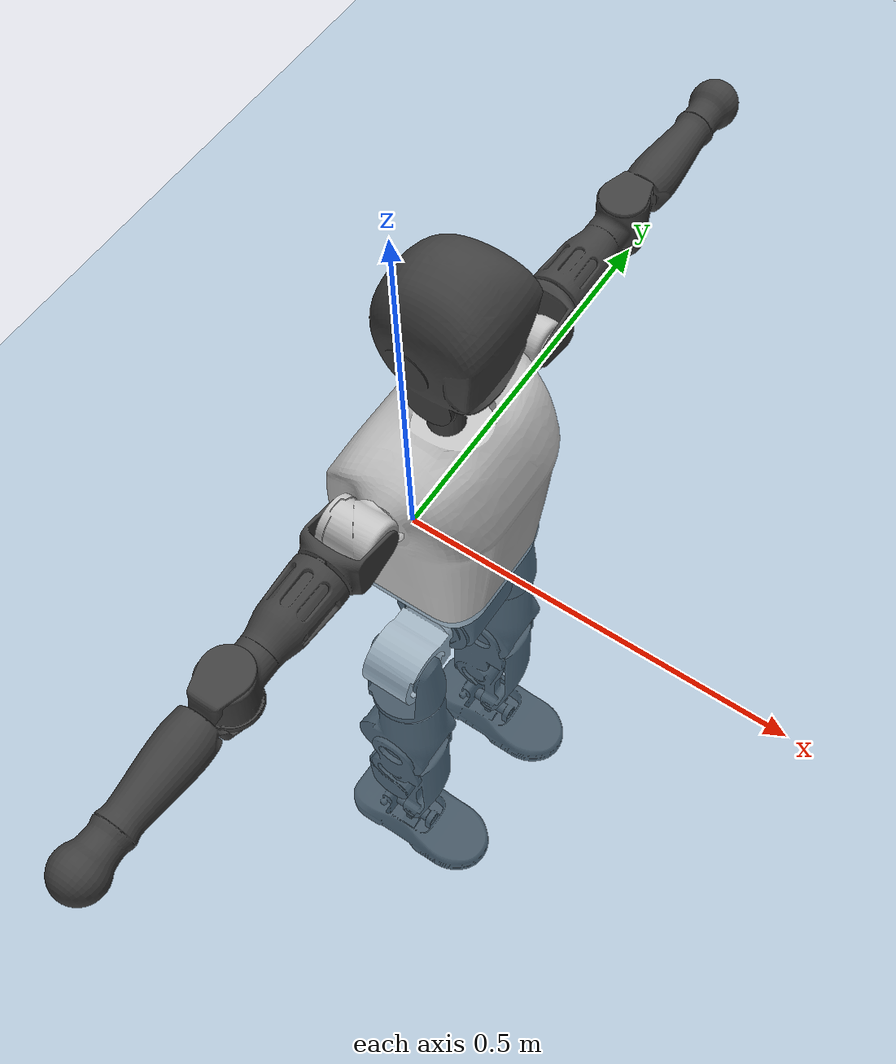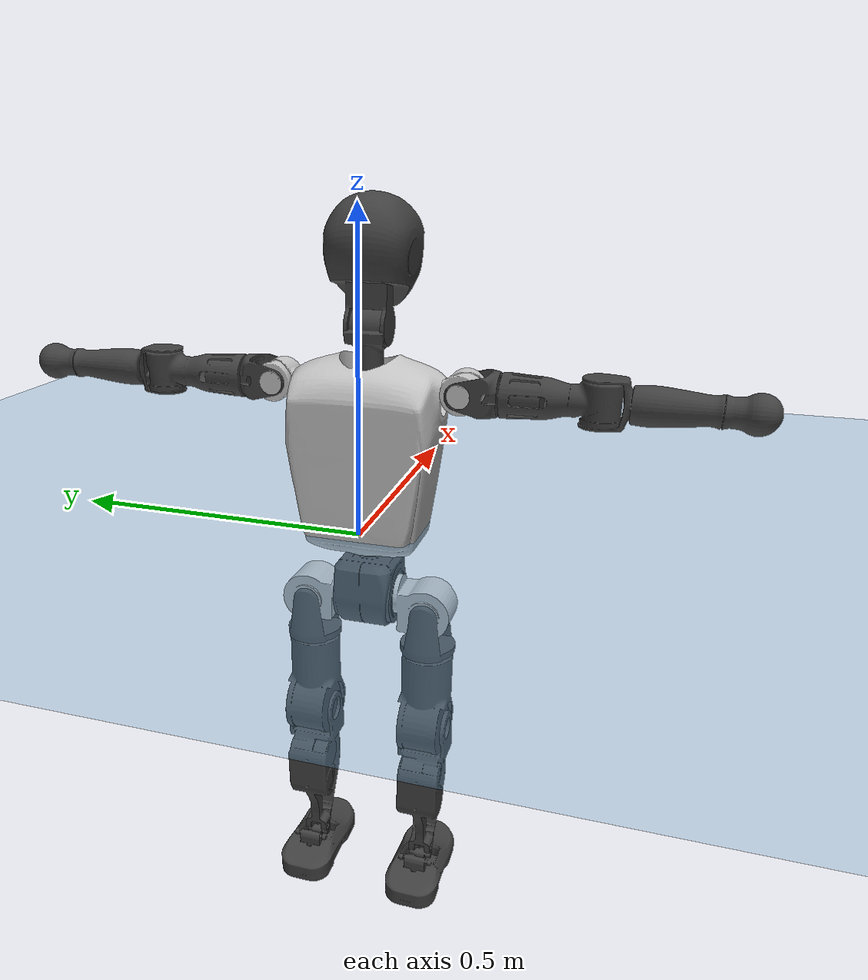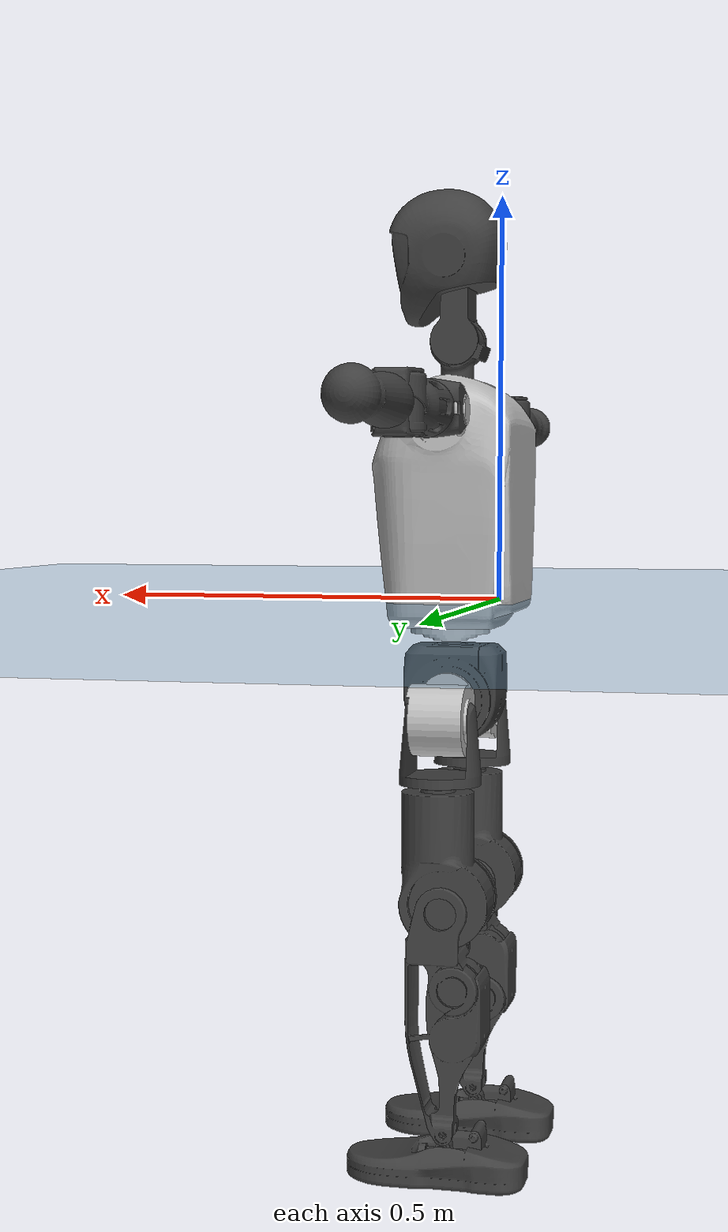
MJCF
<mujoco model="T1">
  <compiler angle="radian" assetdir="assets" balanceinertia="true" inertiafromgeom="false"/>

  <option timestep="0.005" density="1.2" viscosity="2e-05"/>

  <size nkey="1"/>

  <visual>
    <quality shadowsize="8192"/>
    <map shadowclip="0.5"/>
  </visual>

  <default>
    <default class="/">
      <joint armature="0.01" damping="0.01" frictionloss="0.1"/>
      <geom contype="0" conaffinity="0" group="1" solref="-1000 -80"/>
      <site size="0.01 0.005 0.005" group="5"/>
      <general forcelimited="true" biastype="affine" gainprm="25" biasprm="0 -25 -0.6"/>
      <default class="t1">
        <geom rgba="0.25 0.25 0.25 1"/>
        <default class="visual">
          <geom type="mesh" group="2"/>
        </default>
        <default class="collision">
          <geom group="3"/>
        </default>
        <default class="foot">
          <geom size="0.1115 0.05 0.015" type="box" condim="6" group="4" priority="1" solimp="0.015 1 0.015"/>
        </default>
        <default class="reward_collision_sphere">
          <geom group="5" rgba="1 0 0 1"/>
        </default>
      </default>
    </default>
  </default>

  <asset>
    <texture type="skybox" colorspace="auto" name="//unnamed_texture_0" builtin="gradient" rgb1="0.95 0.95 0.95" rgb2="0.95 0.95 0.95" width="100" height="600"/>
    <texture type="2d" colorspace="auto" name="texplane" builtin="checker" rgb1="0.345 0.575 0.748" rgb2="0.345 0.575 0.748" markrgb="1 1 1" width="512" height="512"/>
    <material name="MatPlane" class="/" texture="texplane" texuniform="true" texrepeat="2 2" specular="0.9"/>
    <mesh name="Trunk" class="/" file="Trunk.stl"/>
    <mesh name="H1" class="/" file="H1.stl"/>
    <mesh name="H2" class="/" file="H2.stl"/>
    <mesh name="AL1" class="/" file="AL1.stl"/>
    <mesh name="AL2" class="/" file="AL2.stl"/>
    <mesh name="AL3" class="/" file="AL3.stl"/>
    <mesh name="left_hand_link" class="/" file="left_hand_link.stl"/>
    <mesh name="AR1" class="/" file="AR1.stl"/>
    <mesh name="AR2" class="/" file="AR2.stl"/>
    <mesh name="AR3" class="/" file="AR3.stl"/>
    <mesh name="right_hand_link" class="/" file="right_hand_link.stl"/>
    <mesh name="Waist" class="/" file="Waist.stl"/>
    <mesh name="Hip_Pitch_Left" class="/" file="Hip_Pitch_Left.stl"/>
    <mesh name="Hip_Roll_Left" class="/" file="Hip_Roll_Left.stl"/>
    <mesh name="Hip_Yaw_Left" class="/" file="Hip_Yaw_Left.stl"/>
    <mesh name="Shank_Left" class="/" file="Shank_Left.stl"/>
    <mesh name="Ankle_Cross_Left" class="/" file="Ankle_Cross_Left.stl"/>
    <mesh name="left_foot_link" class="/" file="left_foot_link.stl"/>
    <mesh name="Hip_Pitch_Right" class="/" file="Hip_Pitch_Right.stl"/>
    <mesh name="Hip_Roll_Right" class="/" file="Hip_Roll_Right.stl"/>
    <mesh name="Hip_Yaw_Right" class="/" file="Hip_Yaw_Right.stl"/>
    <mesh name="Shank_Right" class="/" file="Shank_Right.stl"/>
    <mesh name="Ankle_Cross_Right" class="/" file="Ankle_Cross_Right.stl"/>
    <mesh name="right_foot_link" class="/" file="right_foot_link.stl"/>
  </asset>

  <worldbody>
    <geom name="floor" class="/" size="100 100 0.125" type="plane" group="0" material="MatPlane"/>
    <light name="toplight_shadow" class="/" pos="0 0 5" dir="0.0990148 0.0990148 -0.990148" type="directional" ambient="0.04 0.04 0.04" diffuse="0.55 0.55 0.55" specular="0.12 0.12 0.12"/>
    <light name="toplight_fill" class="/" pos="0 0 5" dir="0.0990148 0.0990148 -0.990148" type="directional" castshadow="false" ambient="0.04 0.04 0.04" diffuse="0.3 0.3 0.3" specular="0.08 0.08 0.08"/>
    <body name="trunk" childclass="t1" pos="0.000257204 0.000960764 0.000193826" quat="1 4.79171e-05 -0.000342321 -0.00032124">
      <inertial pos="0.047911 -0.000885971 0.112631" quat="0.999962 0.000301735 -0.00873184 -0.000105279" mass="10.9023" diaginertia="0.0489213 0.070712 0.0739469"/>
      <joint name="//unnamed_joint_0" type="free" armature="0" damping="0" frictionloss="0"/>
      <geom name="//unnamed_geom_1" class="visual" rgba="0.76 0.76 0.76 1" mesh="Trunk"/>
      <geom name="//unnamed_geom_2" class="collision" size="0.0731751 0.0975668 0.14635" pos="0.0529772 0 0.127518" type="box"/>
      <geom name="//unnamed_geom_3" class="reward_collision_sphere" size="0.112202" pos="0.0529772 0 0.106265"/>
      <geom name="//unnamed_geom_4" class="reward_collision_sphere" size="0.014635" pos="0.0529772 0.0834192 0"/>
      <geom name="//unnamed_geom_5" class="reward_collision_sphere" size="0.014635" pos="0.0529772 -0.0834192 0"/>
      <geom name="//unnamed_geom_6" class="reward_collision_sphere" size="0.014635" pos="0.0529772 0.10501 0.191277"/>
      <geom name="//unnamed_geom_7" class="reward_collision_sphere" size="0.014635" pos="0.0529772 -0.10501 0.191277"/>
      <site name="imu" pos="-0.00250735 0.0010048 0.00245728" size="0.00975668"/>
      <camera name="track" pos="0 -1.9628 0" quat="0.707107 0.707107 0 0" mode="trackcom"/>
      <camera name="ego_camera" pos="0.10772 0 0.446313" quat="-0.5 -0.5 0.5 0.5"/>
      <body name="H1" pos="0.0558236 -0.00112147 0.257008" quat="1 -0.000436453 2.12329e-05 2.29089e-05">
        <inertial pos="-0.000282115 -0.000457166 0.0600671" quat="0.76317 -0.00934602 0.00301831 0.646123" mass="0.402071" diaginertia="0.000126164 0.00019766 0.000200543"/>
        <joint name="AAHead_yaw" pos="0 0 0" axis="-0.00129568 0.00438768 0.99999" stiffness="0.00128242" range="-1.56702 1.5604" armature="0.0101779" damping="0.00979345" frictionloss="0.0972403"/>
        <geom name="//unnamed_geom_8" class="visual" mesh="H1"/>
        <body name="H2" pos="-0.00130442 0.000842293 0.0653035" quat="1 -1.94162e-06 0.000233098 -0.000121063">
          <inertial pos="0.00544381 0.00137272 0.105194" quat="0.988507 0.10461 -0.0740409 -0.0801814" mass="0.585643" diaginertia="0.00109731 0.00174404 0.00232988"/>
          <joint name="Head_pitch" pos="0 0 0" axis="-0.00477726 -0.999989 -0.000346498" range="-1.21803 0.350125" armature="0.00925871" damping="0.00603378" frictionloss="0.105647"/>
          <geom name="//unnamed_geom_9" class="visual" mesh="H2"/>
          <geom name="//unnamed_geom_10" class="collision" size="0.0780534" pos="0.00882953 0 0.116891"/>
          <geom name="//unnamed_geom_11" class="reward_collision_sphere" size="0.0878101" pos="0.0176591 0 0.106265"/>
        </body>
      </body>
      <body name="AL1" pos="0.0520786 0.103763 0.231438" quat="1 -8.74082e-05 0.000498295 -2.82361e-05">
        <inertial pos="-0.00180754 0.0443196 0.000327925" quat="0.504392 0.496285 -0.504717 0.49452" mass="0.489377" diaginertia="0.000729903 0.00116971 0.000395257"/>
        <joint name="Left_Shoulder_Pitch" pos="0 0 0" axis="-0.00674558 0.999973 -0.0028425" range="-3.31498 1.23923" armature="0.00952033" damping="0.00799385" frictionloss="0.0984218"/>
        <geom name="//unnamed_geom_12" class="visual" rgba="0.76 0.76 0.76 1" mesh="AL1"/>
        <body name="AL2" pos="0.000862406 0.04643 0.000331058" quat="1 0.000154968 7.88915e-05 4.12502e-05">
          <inertial pos="0.00253456 0.0380779 -0.000430187" quat="0.487662 0.511781 -0.4878 0.512169" mass="0.150419" diaginertia="0.000216466 0.000314689 0.00024136"/>
          <joint name="Left_Shoulder_Roll" pos="0 0 0" axis="-0.999994 0.00271145 0.00194822" range="-1.56674 1.74963" armature="0.00965995" damping="0.0072022" frictionloss="0.0966187"/>
          <geom name="//unnamed_geom_13" class="visual" mesh="AL2"/>
          <body name="AL3" pos="0.000367858 0.0596692 -0.000573352" quat="1 -4.93041e-05 -0.000157335 -0.000126488">
            <inertial pos="0.000585475 0.083724 -3.59482e-05" quat="0.70647 0.707719 -0.00265541 0.00517663" mass="0.942858" diaginertia="0.00678345 0.0115614 0.000819392"/>
            <joint name="Left_Elbow_Pitch" pos="0 0 0" axis="0.000114929 -1 -0.000118489" range="-2.26428 2.25823" armature="0.00978093" damping="0.0182145" frictionloss="0.103855"/>
            <geom name="//unnamed_geom_14" class="visual" mesh="AL3"/>
            <geom name="//unnamed_geom_15" class="collision" size="0.02927 0.0731751" pos="0 0.0490701 0" quat="0.707105 0.707108 0 0" type="cylinder"/>
            <geom name="//unnamed_geom_16" class="reward_collision_sphere" size="0.0351241"/>
            <body name="left_hand_link" pos="0.00122015 0.144078 2.91523e-05" quat="1 7.54837e-05 -2.62335e-05 0.000173441">
              <inertial pos="0.000655399 0.108277 6.25233e-05" quat="0.708235 0.705972 0.00217826 -0.00108293" mass="0.303276" diaginertia="0.00434861 0.00747507 0.000290792"/>
              <joint name="Left_Elbow_Yaw" pos="0 0 0" axis="-0.00015196 0.000187714 1" range="-2.44854 0.000936986" armature="0.00935007" damping="0.0071094" frictionloss="0.0978"/>
              <geom name="//unnamed_geom_17" class="visual" mesh="left_hand_link"/>
              <geom name="//unnamed_geom_18" class="collision" size="0.02927 0.085371" pos="0 0.127582 0" quat="0.707105 0.707108 0 0" type="cylinder"/>
              <geom name="//unnamed_geom_19" class="reward_collision_sphere" size="0.0487834"/>
              <geom name="//unnamed_geom_20" class="reward_collision_sphere" size="0.0341484" pos="0 0.107954 0"/>
              <geom name="//unnamed_geom_21" class="reward_collision_sphere" size="0.0341484" pos="0 0.211002 0"/>
            </body>
          </body>
        </body>
      </body>
      <body name="AR1" pos="0.0496814 -0.105212 0.233235" quat="1 0.000511721 0.000641861 -0.000515376">
        <inertial pos="-0.000612925 -0.0433595 -0.00102679" quat="0.504862 0.495632 -0.504029 0.495397" mass="0.4985" diaginertia="0.000745687 0.00119296 0.0004005"/>
        <joint name="Right_Shoulder_Pitch" pos="0 0 0" axis="0.000750529 -0.999999 -0.00142821" range="-1.2413 3.31299" armature="0.00999918" damping="0.00314118" frictionloss="0.102022"/>
        <geom name="//unnamed_geom_22" class="visual" rgba="0.76 0.76 0.76 1" mesh="AR1"/>
        <body name="AR2" pos="-0.000637965 -0.0455574 -0.0008709" quat="1 -0.000105268 0.000164734 0.000199118">
          <inertial pos="0.00417959 -0.0377052 0.000159657" quat="0.512354 0.48645 -0.511024 0.489607" mass="0.149327" diaginertia="0.000216712 0.000312663 0.000240163"/>
          <joint name="Right_Shoulder_Roll" pos="0 0 0" axis="-0.999943 -0.0104018 -0.00236343" range="-1.72141 1.59003" armature="0.00973141" damping="0.00523554" frictionloss="0.0952152"/>
          <geom name="//unnamed_geom_23" class="visual" mesh="AR2"/>
          <body name="AR3" pos="0.000193375 -0.0594763 4.08844e-05" quat="1 -1.11591e-05 -0.000114681 -0.000305197">
            <inertial pos="0.00125109 -0.0838929 -0.000999296" quat="0.70639 0.707823 -6.70797e-05 -0.000799924" mass="0.950031" diaginertia="0.00708566 0.0120371 0.000867326"/>
            <joint name="Right_Elbow_Pitch" pos="0 0 0" axis="0.00176907 0.999987 -0.00470758" stiffness="0.000745608" range="-2.25822 2.23279" armature="0.0096727" damping="0.00710666" frictionloss="0.0928459"/>
            <geom name="//unnamed_geom_24" class="visual" mesh="AR3"/>
            <geom name="//unnamed_geom_25" class="collision" size="0.02927 0.0731751" pos="0 -0.0490701 0" quat="0.707105 0.707108 0 0" type="cylinder"/>
            <geom name="//unnamed_geom_26" class="reward_collision_sphere" size="0.0351241"/>
            <body name="right_hand_link" pos="0.000378776 -0.143474 3.84543e-05" quat="1 9.59768e-05 0.00017269 -2.9726e-05">
              <inertial pos="0.000843509 -0.108132 0.000516943" quat="0.705629 0.708582 -0.000167394 0.000143581" mass="0.297112" diaginertia="0.00420309 0.0073238 0.000289219"/>
              <joint name="Right_Elbow_Yaw" pos="0 0 0" axis="-0.00190459 -0.000808056 0.999998" stiffness="0.00254342" range="-0.00402586 2.42789" armature="0.0100594" damping="0.00709918" frictionloss="0.0970826"/>
              <geom name="//unnamed_geom_27" class="visual" mesh="right_hand_link"/>
              <geom name="//unnamed_geom_28" class="collision" size="0.02927 0.085371" pos="0 -0.127582 0" quat="0.707105 0.707108 0 0" type="cylinder"/>
              <geom name="//unnamed_geom_29" class="reward_collision_sphere" size="0.0487834"/>
              <geom name="//unnamed_geom_30" class="reward_collision_sphere" size="0.0341484" pos="0 -0.107954 0"/>
              <geom name="//unnamed_geom_31" class="reward_collision_sphere" size="0.0341484" pos="0 -0.211002 0"/>
            </body>
          </body>
        </body>
      </body>
      <body name="Waist" pos="0.0557759 -0.00208598 -0.12353" quat="1 7.71231e-05 -0.000160544 4.91549e-05">
        <inertial pos="0.00119026 -0.00054936 0.00733257" quat="0.983449 -0.000555106 -0.181177 0.00180293" mass="2.41426" diaginertia="0.00291837 0.00492695 0.00650243"/>
        <joint name="Waist" pos="0 0 0" axis="0.00372326 -0.00177747 0.999991" range="-1.55176 1.58807" armature="0.00990935" damping="0.00214357" frictionloss="0.0933674"/>
        <geom name="//unnamed_geom_32" class="visual" mesh="Waist"/>
        <body name="Hip_Pitch_Left" pos="0.00023049 0.104806 0.000409781" quat="1 -4.31018e-05 0.000204379 -0.000602713">
          <inertial pos="0.0013732 -0.00705158 -0.0200901" quat="0.974631 0.223276 0.0150824 0.00372946" mass="0.961951" diaginertia="0.000981032 0.00134464 0.00171965"/>
          <joint name="Left_Hip_Pitch" pos="0 0 0" axis="0.00232514 0.999997 -0.000413575" range="-1.79067 1.58114" armature="0.00974019" damping="0.00656908" frictionloss="0.0964307"/>
          <geom name="//unnamed_geom_33" class="visual" rgba="0.76 0.76 0.76 1" mesh="Hip_Pitch_Left"/>
          <body name="Hip_Roll_Left" pos="0.00163293 -0.000430177 -0.0215517" quat="1 -0.000198589 -7.35033e-05 0.000130881">
            <inertial pos="0.000793489 -0.000453117 -0.0573932" quat="0.706347 -0.00811046 -0.00550443 0.707798" mass="0.364418" diaginertia="0.000942131 0.00137974 0.000693068"/>
            <joint name="Left_Hip_Roll" pos="0 0 0" axis="-0.999995 -0.00233411 -0.00223138" range="-1.55166 0.221568" armature="0.010016" damping="0.00724416" frictionloss="0.0996398"/>
            <geom name="//unnamed_geom_34" class="visual" mesh="Hip_Roll_Left"/>
            <geom name="//unnamed_geom_35" class="reward_collision_sphere" size="0.0536617"/>
            <body name="Hip_Yaw_Left" pos="0.000245765 0.000354162 -0.0856443" quat="1 1.33464e-05 -1.28797e-05 -3.27936e-06">
              <inertial pos="-0.0051852 -0.000646681 -0.0955015" quat="0.696321 -0.0332998 -0.0297905 0.716338" mass="1.98851" diaginertia="0.0135604 0.0224098 0.00342893"/>
              <joint name="Left_Hip_Yaw" pos="0 0 0" axis="0.000605914 0.000518585 -1" stiffness="0.000183904" range="-1.01443 1.04038" armature="0.00929068" damping="3.40254e-06" frictionloss="0.0984613"/>
              <geom name="//unnamed_geom_36" class="visual" mesh="Hip_Yaw_Left"/>
              <geom name="//unnamed_geom_37" class="collision" size="0.0487834 0.0780534" type="cylinder"/>
              <body name="Shank_Left" pos="-0.0118572 0.000560405 -0.143895" quat="1 -0.000189507 4.06489e-05 0.000399008">
                <inertial pos="-0.0056019 0.000590349 -0.132413" quat="0.997618 -5.63352e-05 -0.023293 0.0649257" mass="1.63456" diaginertia="0.0188666 0.0318041 0.00256138"/>
                <joint name="Left_Knee_Pitch" pos="0 0 0" axis="0.00190575 0.999994 0.00275084" range="-0.0194442 2.33659" armature="0.0098195" damping="0.016303" frictionloss="0.0990792"/>
                <geom name="//unnamed_geom_38" class="visual" mesh="Shank_Left"/>
                <geom name="//unnamed_geom_39" class="collision" size="0.0487834 0.0731751" pos="0 0 -0.127518" type="cylinder"/>
                <geom name="//unnamed_geom_40" class="reward_collision_sphere" size="0.0634184"/>
                <body name="Ankle_Cross_Left" pos="0.00112265 0.000662741 -0.298056" quat="1 9.31062e-05 3.8372e-05 9.07157e-05">
                  <inertial pos="-0.00407364 0.00112478 -0.00849493" quat="0.442827 0.551701 0.551133 0.442474" mass="0.0681711" diaginertia="1.54134e-05 2.30676e-05 1.53462e-05"/>
                  <joint name="Left_Ankle_Pitch" pos="0 0 0" axis="-8.52033e-05 1 -0.000203897" range="-0.858183 0.352661" armature="0.00950214" damping="0.00476561" frictionloss="0.0932689"/>
                  <geom name="//unnamed_geom_41" class="visual" mesh="Ankle_Cross_Left"/>
                  <body name="left_foot_link" pos="0.000222809 -0.000920946 -0.0117978" quat="1 -0.00056687 -0.00037504 0.000261576">
                    <inertial pos="-0.00113887 6.92899e-05 -0.00894381" quat="-0.00213352 0.623879 0.00104263 0.781518" mass="0.642599" diaginertia="0.00143251 0.00217758 0.00296794"/>
                    <joint name="Left_Ankle_Roll" pos="0 0 0" axis="-0.999995 0.000786797 -0.00292626" range="-0.456005 0.419919" armature="0.00927693" damping="0.00696205" frictionloss="0.0933272"/>
                    <geom name="//unnamed_geom_42" class="visual" mesh="left_foot_link"/>
                    <geom name="left_foot" class="foot" size="0.103037 0.050688 0.0147197" pos="0.00882953 0 -0.0159397"/>
                    <geom name="//unnamed_geom_44" class="reward_collision_sphere" size="0.0507347" pos="0.00882953 0 -0.0159397"/>
                    <geom name="//unnamed_geom_45" class="reward_collision_sphere" size="0.02927" pos="0.0838805 -0.0225723 -0.0159397"/>
                    <geom name="//unnamed_geom_46" class="reward_collision_sphere" size="0.02927" pos="-0.0618067 -0.0225723 -0.0159397"/>
                    <site name="left_foot" class="foot" pos="0.00882953 0 -0.0159397" size="0.00975668"/>
                  </body>
                </body>
              </body>
            </body>
          </body>
        </body>
        <body name="Hip_Pitch_Right" pos="-0.00141453 -0.104596 -0.00026947" quat="1 8.09088e-05 6.24927e-05 -0.000134805">
          <inertial pos="-0.000184777 0.00767538 -0.0199034" quat="0.973072 -0.230017 0.0146719 -0.00279536" mass="0.944856" diaginertia="0.000978913 0.0013293 0.00168489"/>
          <joint name="Right_Hip_Pitch" pos="0 0 0" axis="0.00131752 -0.999999 -0.000249568" stiffness="0.00489001" range="-1.55919 1.8044" armature="0.00947566" damping="0.00896568" frictionloss="0.101863"/>
          <geom name="//unnamed_geom_47" class="visual" rgba="0.76 0.76 0.76 1" mesh="Hip_Pitch_Right"/>
          <body name="Hip_Roll_Right" pos="0.00109181 -0.00101399 -0.0214053" quat="1 2.12141e-05 1.12095e-06 -2.3516e-06">
            <inertial pos="0.000904809 -0.000835706 -0.0574246" quat="0.70745 -0.00532206 -0.0065698 0.706713" mass="0.357916" diaginertia="0.000926314 0.00136401 0.000690085"/>
            <joint name="Right_Hip_Roll" pos="0 0 0" axis="-0.999998 -0.00148027 -0.0011218" stiffness="0.00362685" range="-0.201649 1.54175" armature="0.00997523" damping="0.000943498" frictionloss="0.0918375"/>
            <geom name="//unnamed_geom_48" class="visual" mesh="Hip_Roll_Right"/>
            <geom name="//unnamed_geom_49" class="reward_collision_sphere" size="0.0536617"/>
            <body name="Hip_Yaw_Right" pos="0.00154852 0.000332227 -0.0874395" quat="1 7.244e-05 0.000166958 0.000398469">
              <inertial pos="-0.00641983 0.000376823 -0.0955112" quat="0.718779 -0.0347406 -0.0294474 0.693746" mass="1.9949" diaginertia="0.0135871 0.0228077 0.00345712"/>
              <joint name="Right_Hip_Yaw" pos="0 0 0" axis="0.00295069 -0.0015996 -0.999994" range="-0.994227 1.01378" armature="0.00985223" damping="0.00540077" frictionloss="0.0985474"/>
              <geom name="//unnamed_geom_50" class="visual" mesh="Hip_Yaw_Right"/>
              <geom name="//unnamed_geom_51" class="collision" size="0.0487834 0.0780534" type="cylinder"/>
              <body name="Shank_Right" pos="-0.0106323 -0.00111677 -0.141957" quat="1 -5.61751e-05 0.000114271 -0.000306833">
                <inertial pos="-0.00628886 -2.98135e-05 -0.129945" quat="0.999447 -0.00152403 -0.0202028 -0.0263664" mass="1.69852" diaginertia="0.019062 0.0320669 0.00266432"/>
                <joint name="Right_Knee_Pitch" pos="0 0 0" axis="0.00386462 -0.999982 0.0046544" range="-2.34789 -0.0162428" armature="0.00976106" damping="0.0128412" frictionloss="0.098109"/>
                <geom name="//unnamed_geom_52" class="visual" mesh="Shank_Right"/>
                <geom name="//unnamed_geom_53" class="collision" size="0.0487834 0.0731751" pos="0 0 -0.127518" type="cylinder"/>
                <geom name="//unnamed_geom_54" class="reward_collision_sphere" size="0.0634184"/>
                <body name="Ankle_Cross_Right" pos="-0.00138625 -0.00101919 -0.298362" quat="1 3.98218e-05 6.92974e-05 0.000138724">
                  <inertial pos="-0.0036713 0.000436003 -0.00805737" quat="0.44341 0.551041 0.550893 0.443011" mass="0.0677916" diaginertia="1.52064e-05 2.33749e-05 1.53822e-05"/>
                  <joint name="Right_Ankle_Pitch" pos="0 0 0" axis="0.00175699 -0.999995 -0.00273201" range="-0.384233 0.875943" armature="0.00965507" damping="0.00990574" frictionloss="0.0950149"/>
                  <geom name="//unnamed_geom_55" class="visual" mesh="Ankle_Cross_Right"/>
                  <body name="right_foot_link" pos="0.000519013 -0.000187069 -0.0135442" quat="1 8.62829e-05 0.00017175 -1.04626e-05">
                    <inertial pos="-0.000195004 3.21006e-05 -0.00987656" quat="-0.00467663 0.6214 -0.000763723 0.783479" mass="0.651386" diaginertia="0.00145023 0.002172 0.00294986"/>
                    <joint name="Right_Ankle_Roll" pos="0 0 0" axis="-0.999999 -0.000526058 -0.000956419" range="-0.448591 0.456515" armature="0.00977698" damping="0.00831074" frictionloss="0.0911269"/>
                    <geom name="//unnamed_geom_56" class="visual" mesh="right_foot_link"/>
                    <geom name="right_foot" class="foot" size="0.0984196 0.0454769 0.0145891" pos="0.00882953 0 -0.0159397"/>
                    <geom name="//unnamed_geom_58" class="reward_collision_sphere" size="0.0390267"/>
                    <geom name="//unnamed_geom_59" class="reward_collision_sphere" size="0.02927" pos="0.00882953 0 -0.0159397"/>
                    <geom name="//unnamed_geom_60" class="reward_collision_sphere" size="0.02927" pos="0.0838805 0.0225723 -0.0159397"/>
                    <geom name="//unnamed_geom_61" class="reward_collision_sphere" size="0.02927" pos="-0.0618067 0.0225723 -0.0159397"/>
                    <site name="right_foot" class="foot" pos="0.00882953 0 -0.0159397" size="0.00975668"/>
                  </body>
                </body>
              </body>
            </body>
          </body>
        </body>
      </body>
    </body>
  </worldbody>

  <contact>
    <pair class="/" geom1="floor" geom2="left_foot" name="//unnamed_contact_0"/>
    <pair class="/" geom1="floor" geom2="right_foot" name="//unnamed_contact_1"/>
  </contact>

  <actuator>
    <general name="AAHead_yaw" class="/" joint="AAHead_yaw" forcerange="-6.92668 6.92668" gainprm="23.421" biasprm="0 -23.421 -0.55674"/>
    <general name="Head_pitch" class="/" joint="Head_pitch" forcerange="-6.72423 6.72423" gainprm="23.421" biasprm="0 -23.421 -0.55674"/>
    <general name="Left_Shoulder_Pitch" class="/" joint="Left_Shoulder_Pitch" forcerange="-16.3333 16.3333" gainprm="23.421" biasprm="0 -23.421 -0.55674"/>
    <general name="Left_Shoulder_Roll" class="/" joint="Left_Shoulder_Roll" forcerange="-17.2902 17.2902" gainprm="23.421" biasprm="0 -23.421 -0.55674"/>
    <general name="Left_Elbow_Pitch" class="/" joint="Left_Elbow_Pitch" forcerange="-18.2466 18.2466" gainprm="23.421" biasprm="0 -23.421 -0.55674"/>
    <general name="Left_Elbow_Yaw" class="/" joint="Left_Elbow_Yaw" forcerange="-17.7579 17.7579" gainprm="23.421" biasprm="0 -23.421 -0.55674"/>
    <general name="Right_Shoulder_Pitch" class="/" joint="Right_Shoulder_Pitch" forcerange="-17.4402 17.4402" gainprm="23.421" biasprm="0 -23.421 -0.55674"/>
    <general name="Right_Shoulder_Roll" class="/" joint="Right_Shoulder_Roll" forcerange="-17.371 17.371" gainprm="23.421" biasprm="0 -23.421 -0.55674"/>
    <general name="Right_Elbow_Pitch" class="/" joint="Right_Elbow_Pitch" forcerange="-18.2319 18.2319" gainprm="23.421" biasprm="0 -23.421 -0.55674"/>
    <general name="Right_Elbow_Yaw" class="/" joint="Right_Elbow_Yaw" forcerange="-18.0821 18.0821" gainprm="23.421" biasprm="0 -23.421 -0.55674"/>
    <general name="Waist" class="/" joint="Waist" forcerange="-30.4596 30.4596" gainprm="23.421" biasprm="0 -23.421 -0.55674"/>
    <general name="Left_Hip_Pitch" class="/" joint="Left_Hip_Pitch" forcerange="-43.73 43.73" gainprm="23.421" biasprm="0 -23.421 -0.55674"/>
    <general name="Left_Hip_Roll" class="/" joint="Left_Hip_Roll" forcerange="-30.3148 30.3148" gainprm="23.421" biasprm="0 -23.421 -0.55674"/>
    <general name="Left_Hip_Yaw" class="/" joint="Left_Hip_Yaw" forcerange="-30.3467 30.3467" gainprm="23.421" biasprm="0 -23.421 -0.55674"/>
    <general name="Left_Knee_Pitch" class="/" joint="Left_Knee_Pitch" forcerange="-56.4886 56.4886" gainprm="23.421" biasprm="0 -23.421 -0.55674"/>
    <general name="Left_Ankle_Pitch" class="/" joint="Left_Ankle_Pitch" forcerange="-20.3632 20.3632" gainprm="23.421" biasprm="0 -23.421 -0.55674"/>
    <general name="Left_Ankle_Roll" class="/" joint="Left_Ankle_Roll" forcerange="-14.2829 14.2829" gainprm="23.421" biasprm="0 -23.421 -0.55674"/>
    <general name="Right_Hip_Pitch" class="/" joint="Right_Hip_Pitch" forcerange="-43.4831 43.4831" gainprm="23.421" biasprm="0 -23.421 -0.55674"/>
    <general name="Right_Hip_Roll" class="/" joint="Right_Hip_Roll" forcerange="-29.9754 29.9754" gainprm="23.421" biasprm="0 -23.421 -0.55674"/>
    <general name="Right_Hip_Yaw" class="/" joint="Right_Hip_Yaw" forcerange="-29.5773 29.5773" gainprm="23.421" biasprm="0 -23.421 -0.55674"/>
    <general name="Right_Knee_Pitch" class="/" joint="Right_Knee_Pitch" forcerange="-59.6633 59.6633" gainprm="23.421" biasprm="0 -23.421 -0.55674"/>
    <general name="Right_Ankle_Pitch" class="/" joint="Right_Ankle_Pitch" forcerange="-19.7633 19.7633" gainprm="23.421" biasprm="0 -23.421 -0.55674"/>
    <general name="Right_Ankle_Roll" class="/" joint="Right_Ankle_Roll" forcerange="-14.7687 14.7687" gainprm="23.421" biasprm="0 -23.421 -0.55674"/>
  </actuator>

  <sensor>
    <gyro site="imu" name="imu_angular_velocity"/>
    <velocimeter site="imu" name="imu_linear_velocity"/>
    <framelinvel objtype="site" objname="left_foot" name="left_foot_global_linear_velocity"/>
    <framelinvel objtype="site" objname="right_foot" name="right_foot_global_linear_velocity"/>
  </sensor>

  <keyframe>
    <key name="home" qpos="0 0 0.6385 1 0 0 0 0 0 0 1.4 0 -0.4 0 -1.4 0 0.4 0 -0.4 0 0 0.8 -0.4 0 0.4 0 0 -0.8 0.4 0"/>
  </keyframe>
</mujoco>
